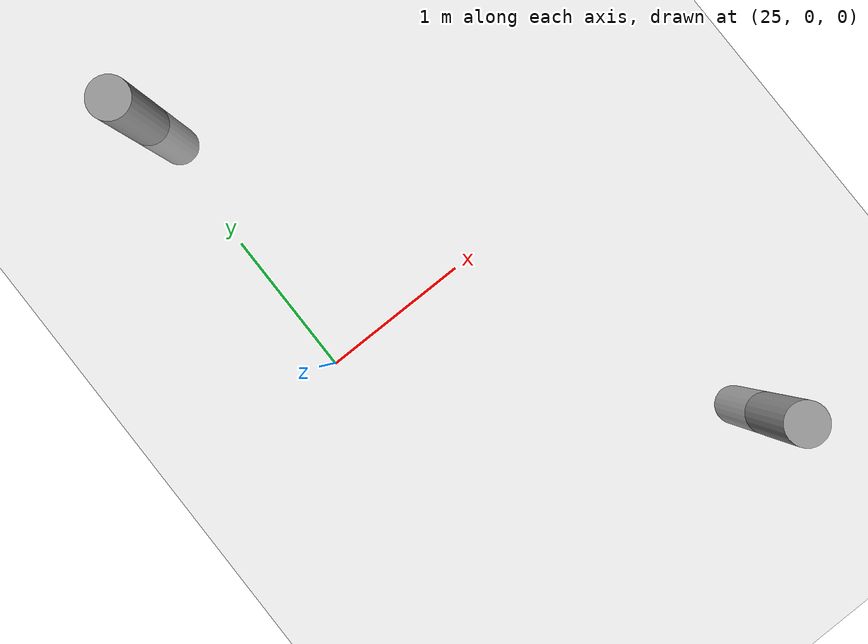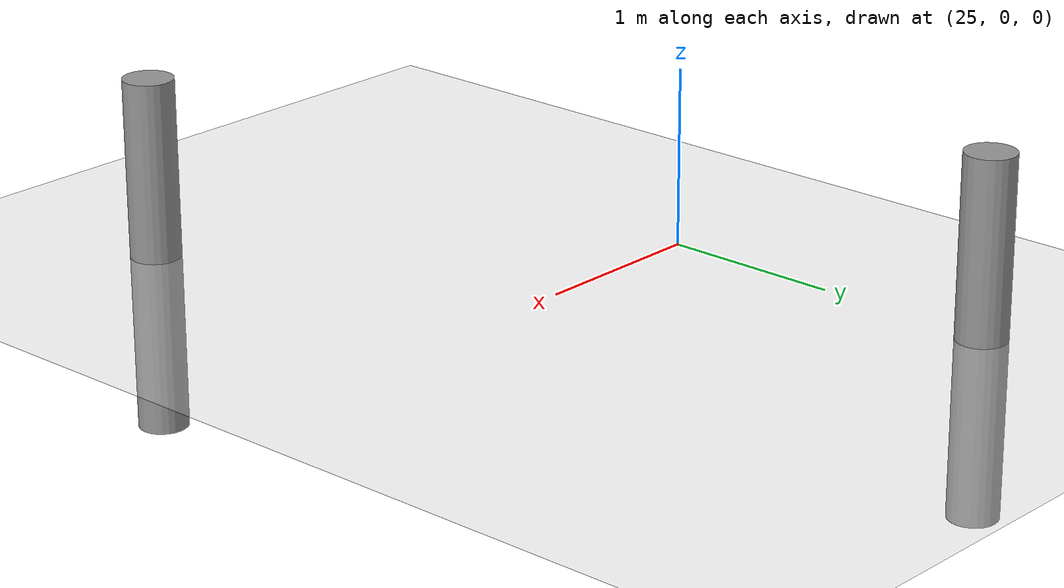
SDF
<sdf version="1.6">
 <world name="default">
  <model name="ground_plane">
   <static>1</static>
   <link name="link">
    <collision name="collision">
     <geometry><plane><normal>0 0 1</normal><size>100 100</size></plane></geometry>
     <surface><friction><ode><mu>100</mu><mu2>50</mu2></ode></friction></surface>
    </collision>
    <visual name="visual">
     <cast_shadows>0</cast_shadows>
     <geometry><plane><normal>0 0 1</normal><size>100 100</size></plane></geometry>
     <material>
      <script><uri>file://media/materials/scripts/gazebo.material</uri><name>Gazebo/Grey</name></script>
     </material>
    </visual>
   </link>
  </model>
  <model name="my_cylinder014_clone_13_0">
   <pose>25 2 0 0 -0 0</pose>
   <link name="my_cylinder014::link">
    <inertial>
     <mass>1</mass>
     <inertia><ixx>0.145833</ixx><ixy>0</ixy><ixz>0</ixz><iyy>0.145833</iyy><iyz>0</iyz><izz>0.125</izz></inertia>
    </inertial>
    <visual name="visual">
     <geometry><cylinder><radius>0.14</radius><length>2</length></cylinder></geometry>
     <material>
      <script><name>Gazebo/Grey</name><uri>file://media/materials/scripts/gazebo.material</uri></script>
      <ambient>0.3 0.3 0.3 1</ambient>
      <diffuse>0.7 0.7 0.7 1</diffuse>
      <specular>1 0.01 0.01 1</specular>
      <emissive>0 0 0 1</emissive>
      <shader type="vertex"><normal_map>__default__</normal_map></shader>
     </material>
    </visual>
    <collision name="collision">
     <geometry><cylinder><radius>0.14</radius><length>2</length></cylinder></geometry>
     <surface>
      <friction>
       <ode><mu>1</mu><mu2>1</mu2><fdir1>0 0 0</fdir1><slip1>0</slip1><slip2>0</slip2></ode>
       <torsional>
        <coefficient>1</coefficient>
        <patch_radius>0</patch_radius>
        <surface_radius>0</surface_radius>
        <use_patch_radius>1</use_patch_radius>
        <ode><slip>0</slip></ode>
       </torsional>
      </friction>
      <bounce><restitution_coefficient>0</restitution_coefficient><threshold>1e+06</threshold></bounce>
      <contact>
       <collide_without_contact>0</collide_without_contact>
       <collide_without_contact_bitmask>1</collide_without_contact_bitmask>
       <collide_bitmask>1</collide_bitmask>
       <ode>
        <soft_cfm>0</soft_cfm>
        <soft_erp>0.2</soft_erp>
        <kp>1e+13</kp>
        <kd>1</kd>
        <max_vel>0.01</max_vel>
        <min_depth>0</min_depth>
       </ode>
       <bullet>
        <split_impulse>1</split_impulse>
        <split_impulse_penetration_threshold>-0.01</split_impulse_penetration_threshold>
        <soft_cfm>0</soft_cfm>
        <soft_erp>0.2</soft_erp>
        <kp>1e+13</kp>
        <kd>1</kd>
       </bullet>
      </contact>
     </surface>
    </collision>
   </link>
   <static>1</static>
  </model>
  <model name="my_cylinder014_clone_13_0">
   <pose>25 2 0 0 -0 0</pose>
   <link name="my_cylinder014::link">
    <inertial>
     <mass>1</mass>
     <inertia><ixx>0.145833</ixx><ixy>0</ixy><ixz>0</ixz><iyy>0.145833</iyy><iyz>0</iyz><izz>0.125</izz></inertia>
    </inertial>
    <visual name="visual">
     <geometry><cylinder><radius>0.14</radius><length>2</length></cylinder></geometry>
     <material>
      <script><name>Gazebo/Grey</name><uri>file://media/materials/scripts/gazebo.material</uri></script>
      <ambient>0.3 0.3 0.3 1</ambient>
      <diffuse>0.7 0.7 0.7 1</diffuse>
      <specular>1 0.01 0.01 1</specular>
      <emissive>0 0 0 1</emissive>
      <shader type="vertex"><normal_map>__default__</normal_map></shader>
     </material>
    </visual>
    <collision name="collision">
     <geometry><cylinder><radius>0.14</radius><length>2</length></cylinder></geometry>
     <surface>
      <friction>
       <ode><mu>1</mu><mu2>1</mu2><fdir1>0 0 0</fdir1><slip1>0</slip1><slip2>0</slip2></ode>
       <torsional>
        <coefficient>1</coefficient>
        <patch_radius>0</patch_radius>
        <surface_radius>0</surface_radius>
        <use_patch_radius>1</use_patch_radius>
        <ode><slip>0</slip></ode>
       </torsional>
      </friction>
      <bounce><restitution_coefficient>0</restitution_coefficient><threshold>1e+06</threshold></bounce>
      <contact>
       <collide_without_contact>0</collide_without_contact>
       <collide_without_contact_bitmask>1</collide_without_contact_bitmask>
       <collide_bitmask>1</collide_bitmask>
       <ode>
        <soft_cfm>0</soft_cfm>
        <soft_erp>0.2</soft_erp>
        <kp>1e+13</kp>
        <kd>1</kd>
        <max_vel>0.01</max_vel>
        <min_depth>0</min_depth>
       </ode>
       <bullet>
        <split_impulse>1</split_impulse>
        <split_impulse_penetration_threshold>-0.01</split_impulse_penetration_threshold>
        <soft_cfm>0</soft_cfm>
        <soft_erp>0.2</soft_erp>
        <kp>1e+13</kp>
        <kd>1</kd>
       </bullet>
      </contact>
     </surface>
    </collision>
   </link>
   <static>1</static>
  </model>
  <model name="my_cylinder014_clone_11_1">
   <pose>27 -2 0 0 -0 0</pose>
   <link name="my_cylinder014::link">
    <inertial>
     <mass>1</mass>
     <inertia><ixx>0.145833</ixx><ixy>0</ixy><ixz>0</ixz><iyy>0.145833</iyy><iyz>0</iyz><izz>0.125</izz></inertia>
    </inertial>
    <visual name="visual">
     <geometry><cylinder><radius>0.14</radius><length>2</length></cylinder></geometry>
     <material>
      <script><name>Gazebo/Grey</name><uri>file://media/materials/scripts/gazebo.material</uri></script>
      <ambient>0.3 0.3 0.3 1</ambient>
      <diffuse>0.7 0.7 0.7 1</diffuse>
      <specular>1 0.01 0.01 1</specular>
      <emissive>0 0 0 1</emissive>
      <shader type="vertex"><normal_map>__default__</normal_map></shader>
     </material>
    </visual>
    <collision name="collision">
     <geometry><cylinder><radius>0.14</radius><length>2</length></cylinder></geometry>
     <surface>
      <friction>
       <ode><mu>1</mu><mu2>1</mu2><fdir1>0 0 0</fdir1><slip1>0</slip1><slip2>0</slip2></ode>
       <torsional>
        <coefficient>1</coefficient>
        <patch_radius>0</patch_radius>
        <surface_radius>0</surface_radius>
        <use_patch_radius>1</use_patch_radius>
        <ode><slip>0</slip></ode>
       </torsional>
      </friction>
      <bounce><restitution_coefficient>0</restitution_coefficient><threshold>1e+06</threshold></bounce>
      <contact>
       <collide_without_contact>0</collide_without_contact>
       <collide_without_contact_bitmask>1</collide_without_contact_bitmask>
       <collide_bitmask>1</collide_bitmask>
       <ode>
        <soft_cfm>0</soft_cfm>
        <soft_erp>0.2</soft_erp>
        <kp>1e+13</kp>
        <kd>1</kd>
        <max_vel>0.01</max_vel>
        <min_depth>0</min_depth>
       </ode>
       <bullet>
        <split_impulse>1</split_impulse>
        <split_impulse_penetration_threshold>-0.01</split_impulse_penetration_threshold>
        <soft_cfm>0</soft_cfm>
        <soft_erp>0.2</soft_erp>
        <kp>1e+13</kp>
        <kd>1</kd>
       </bullet>
      </contact>
     </surface>
    </collision>
   </link>
   <static>1</static>
  </model>
 </world>
</sdf>
